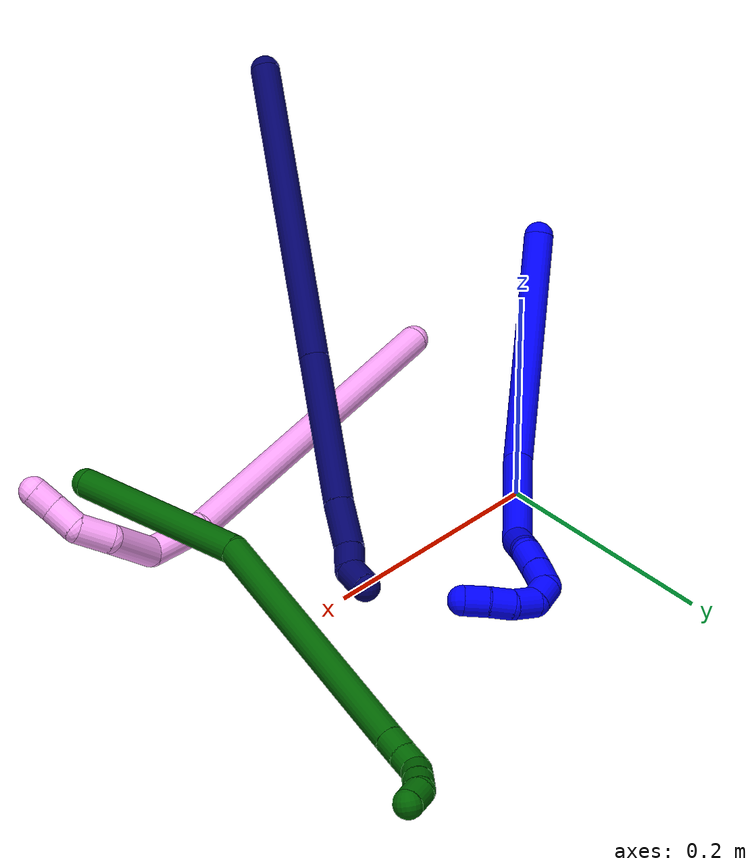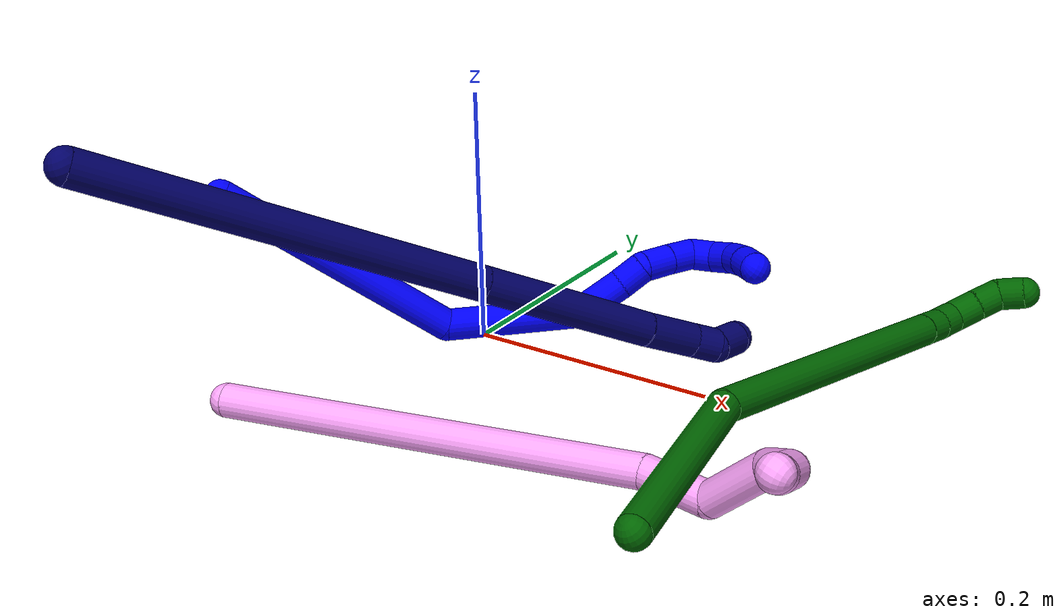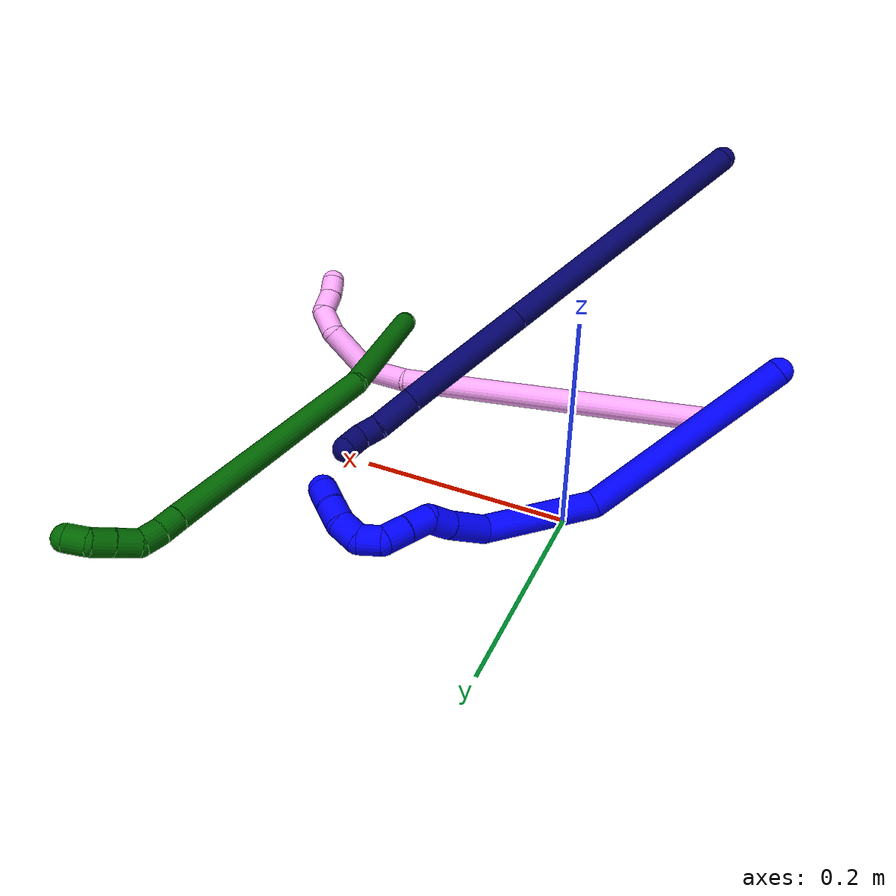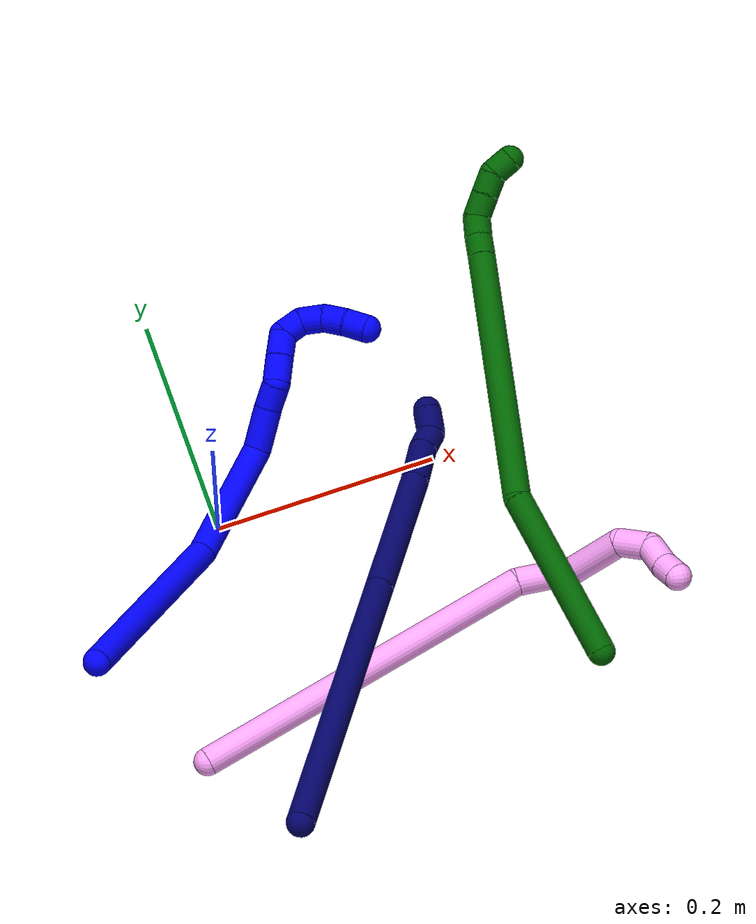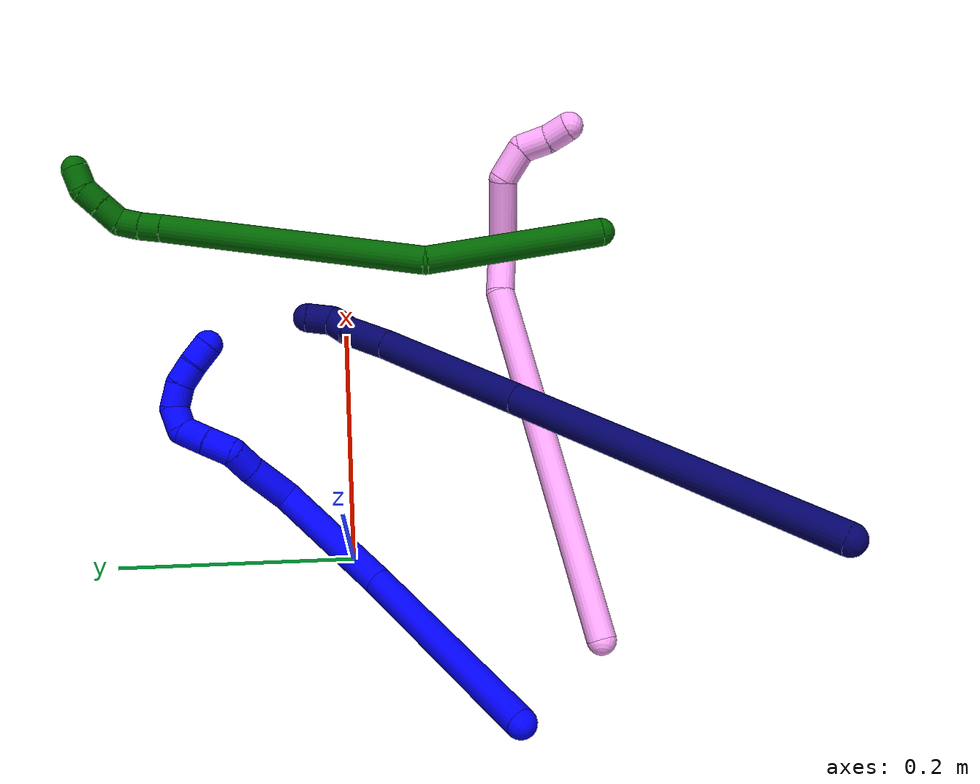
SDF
<sdf version="1.7">
 <world name="default">
  <model name="photoneo_s_sensor">
   <static>1</static>
   <pose>0 0 2 1.57079 1.57079 3.14159</pose>
   <link name="link">
    <inertial><mass>0.1</mass></inertial>
    <sensor name="sensor" type="depth">
     <update_rate>30</update_rate>
     <camera>
      <horizontal_fov>1.22</horizontal_fov>
      <image><width>1920</width><height>1200</height><format>B8G8R8</format></image>
      <clip><near>0.1</near><far>4</far></clip>
      <depth_camera><output>points</output></depth_camera>
     </camera>
     <plugin name="camera_plugin" filename="libgazebo_ros_depth_camera.so">
      <baseline>0.2</baseline>
      <alwaysOn>1</alwaysOn>
      <updateRate>0.0</updateRate>
      <cameraName>camera_ir</cameraName>
      <imageTopicName>/camera/color/image_raw</imageTopicName>
      <cameraInfoTopicName>/camera/color/camera_info</cameraInfoTopicName>
      <depthImageTopicName>/camera/depth/image_raw</depthImageTopicName>
      <depthImageCameraInfoTopicName>/camera/depth/camera_info</depthImageCameraInfoTopicName>
      <pointCloudTopicName>/camera/depth/points</pointCloudTopicName>
      <frameName>fr_optical</frameName>
      <pointCloudCutoff>0.1</pointCloudCutoff>
      <pointCloudCutoffMax>2.0</pointCloudCutoffMax>
      <distortionK1>0</distortionK1>
      <distortionK2>0</distortionK2>
      <distortionK3>0</distortionK3>
      <distortionT1>0</distortionT1>
      <distortionT2>0</distortionT2>
      <CxPrime>0</CxPrime>
      <Cx>0</Cx>
      <Cy>0</Cy>
      <focalLength>0</focalLength>
      <hackBaseline>0</hackBaseline>
     </plugin>
    </sensor>
   </link>
  </model>
  <model name="1">
   <static>0</static>
   <link name="1">
    <collision name="collision-cylinder-e_1_1_4">
     <pose>0.002412 -0.004543 -0.100355 3.09636 0.024004 0.975644</pose>
     <geometry><cylinder><radius>0.0125</radius><length>0.200973</length></cylinder></geometry>
     <surface>
      <friction><ode><mu>1.16</mu><mu2>1.16</mu2><slip1>0</slip1><slip2>0</slip2></ode></friction>
      <contact><ode><kp>1e+06</kp><kd>1</kd><max_vel>0</max_vel><min_depth>0.001</min_depth></ode></contact>
     </surface>
    </collision>
    <visual name="visual-cylinder-e_1_1_4">
     <pose>0.002412 -0.004543 -0.100355 3.09636 0.024004 0.975644</pose>
     <geometry><cylinder><radius>0.0125</radius><length>0.200973</length></cylinder></geometry>
     <material><ambient>0 0 1 1</ambient></material>
    </visual>
    <collision name="collision-cylinder-e_2_4_5">
     <pose>0.017116 0.018301 -0.245163 -2.58944 0.231215 -0.778003</pose>
     <geometry><cylinder><radius>0.0125</radius><length>0.10728</length></cylinder></geometry>
     <surface>
      <friction><ode><mu>1.16</mu><mu2>1.16</mu2><slip1>0</slip1><slip2>0</slip2></ode></friction>
      <contact><ode><kp>1e+06</kp><kd>1</kd><max_vel>0</max_vel><min_depth>0.001</min_depth></ode></contact>
     </surface>
    </collision>
    <visual name="visual-cylinder-e_2_4_5">
     <pose>0.017116 0.018301 -0.245163 -2.58944 0.231215 -0.778003</pose>
     <geometry><cylinder><radius>0.0125</radius><length>0.10728</length></cylinder></geometry>
     <material><ambient>0 0 1 1</ambient></material>
    </visual>
    <collision name="collision-cylinder-e_3_5_6">
     <pose>0.034408 0.062632 -0.2986 -2.05829 0.255019 -0.41988</pose>
     <geometry><cylinder><radius>0.0125</radius><length>0.039639</length></cylinder></geometry>
     <surface>
      <friction><ode><mu>1.16</mu><mu2>1.16</mu2><slip1>0</slip1><slip2>0</slip2></ode></friction>
      <contact><ode><kp>1e+06</kp><kd>1</kd><max_vel>0</max_vel><min_depth>0.001</min_depth></ode></contact>
     </surface>
    </collision>
    <visual name="visual-cylinder-e_3_5_6">
     <pose>0.034408 0.062632 -0.2986 -2.05829 0.255019 -0.41988</pose>
     <geometry><cylinder><radius>0.0125</radius><length>0.039639</length></cylinder></geometry>
     <material><ambient>0 0 1 1</ambient></material>
    </visual>
    <collision name="collision-cylinder-e_4_6_7">
     <pose>0.043514 0.089275 -0.311739 -1.97561 0.371149 -0.554694</pose>
     <geometry><cylinder><radius>0.0125</radius><length>0.022643</length></cylinder></geometry>
     <surface>
      <friction><ode><mu>1.16</mu><mu2>1.16</mu2><slip1>0</slip1><slip2>0</slip2></ode></friction>
      <contact><ode><kp>1e+06</kp><kd>1</kd><max_vel>0</max_vel><min_depth>0.001</min_depth></ode></contact>
     </surface>
    </collision>
    <visual name="visual-cylinder-e_4_6_7">
     <pose>0.043514 0.089275 -0.311739 -1.97561 0.371149 -0.554694</pose>
     <geometry><cylinder><radius>0.0125</radius><length>0.022643</length></cylinder></geometry>
     <material><ambient>0 0 1 1</ambient></material>
    </visual>
    <collision name="collision-cylinder-e_5_7_8">
     <pose>0.046689 0.10698 -0.325044 -2.42266 -0.076394 0.20269</pose>
     <geometry><cylinder><radius>0.0125</radius><length>0.024388</length></cylinder></geometry>
     <surface>
      <friction><ode><mu>1.16</mu><mu2>1.16</mu2><slip1>0</slip1><slip2>0</slip2></ode></friction>
      <contact><ode><kp>1e+06</kp><kd>1</kd><max_vel>0</max_vel><min_depth>0.001</min_depth></ode></contact>
     </surface>
    </collision>
    <visual name="visual-cylinder-e_5_7_8">
     <pose>0.046689 0.10698 -0.325044 -2.42266 -0.076394 0.20269</pose>
     <geometry><cylinder><radius>0.0125</radius><length>0.024388</length></cylinder></geometry>
     <material><ambient>0 0 1 1</ambient></material>
    </visual>
    <collision name="collision-cylinder-e_6_8_9">
     <pose>0.044982 0.122081 -0.342994 -2.46319 -0.0686 0.19389</pose>
     <geometry><cylinder><radius>0.0125</radius><length>0.02266</length></cylinder></geometry>
     <surface>
      <friction><ode><mu>1.16</mu><mu2>1.16</mu2><slip1>0</slip1><slip2>0</slip2></ode></friction>
      <contact><ode><kp>1e+06</kp><kd>1</kd><max_vel>0</max_vel><min_depth>0.001</min_depth></ode></contact>
     </surface>
    </collision>
    <visual name="visual-cylinder-e_6_8_9">
     <pose>0.044982 0.122081 -0.342994 -2.46319 -0.0686 0.19389</pose>
     <geometry><cylinder><radius>0.0125</radius><length>0.02266</length></cylinder></geometry>
     <material><ambient>0 0 1 1</ambient></material>
    </visual>
    <collision name="collision-cylinder-e_7_9_10">
     <pose>0.050072 0.131604 -0.35965 -2.84165 0.619669 -2.25962</pose>
     <geometry><cylinder><radius>0.0125</radius><length>0.020203</length></cylinder></geometry>
     <surface>
      <friction><ode><mu>1.16</mu><mu2>1.16</mu2><slip1>0</slip1><slip2>0</slip2></ode></friction>
      <contact><ode><kp>1e+06</kp><kd>1</kd><max_vel>0</max_vel><min_depth>0.001</min_depth></ode></contact>
     </surface>
    </collision>
    <visual name="visual-cylinder-e_7_9_10">
     <pose>0.050072 0.131604 -0.35965 -2.84165 0.619669 -2.25962</pose>
     <geometry><cylinder><radius>0.0125</radius><length>0.020203</length></cylinder></geometry>
     <material><ambient>0 0 1 1</ambient></material>
    </visual>
    <collision name="collision-cylinder-e_8_10_11">
     <pose>0.066298 0.134445 -0.370569 -3.008 1.28088 -2.96254</pose>
     <geometry><cylinder><radius>0.0125</radius><length>0.021621</length></cylinder></geometry>
     <surface>
      <friction><ode><mu>1.16</mu><mu2>1.16</mu2><slip1>0</slip1><slip2>0</slip2></ode></friction>
      <contact><ode><kp>1e+06</kp><kd>1</kd><max_vel>0</max_vel><min_depth>0.001</min_depth></ode></contact>
     </surface>
    </collision>
    <visual name="visual-cylinder-e_8_10_11">
     <pose>0.066298 0.134445 -0.370569 -3.008 1.28088 -2.96254</pose>
     <geometry><cylinder><radius>0.0125</radius><length>0.021621</length></cylinder></geometry>
     <material><ambient>0 0 1 1</ambient></material>
    </visual>
    <collision name="collision-cylinder-e_9_11_12">
     <pose>0.086579 0.133026 -0.373818 1.67191 1.38746 1.4878</pose>
     <geometry><cylinder><radius>0.0125</radius><length>0.020181</length></cylinder></geometry>
     <surface>
      <friction><ode><mu>1.16</mu><mu2>1.16</mu2><slip1>0</slip1><slip2>0</slip2></ode></friction>
      <contact><ode><kp>1e+06</kp><kd>1</kd><max_vel>0</max_vel><min_depth>0.001</min_depth></ode></contact>
     </surface>
    </collision>
    <visual name="visual-cylinder-e_9_11_12">
     <pose>0.086579 0.133026 -0.373818 1.67191 1.38746 1.4878</pose>
     <geometry><cylinder><radius>0.0125</radius><length>0.020181</length></cylinder></geometry>
     <material><ambient>0 0 1 1</ambient></material>
    </visual>
    <collision name="collision-cylinder-e_10_12_2">
     <pose>0.106214 0.128092 -0.374409 1.70059 1.25903 1.38509</pose>
     <geometry><cylinder><radius>0.0125</radius><length>0.020412</length></cylinder></geometry>
     <surface>
      <friction><ode><mu>1.16</mu><mu2>1.16</mu2><slip1>0</slip1><slip2>0</slip2></ode></friction>
      <contact><ode><kp>1e+06</kp><kd>1</kd><max_vel>0</max_vel><min_depth>0.001</min_depth></ode></contact>
     </surface>
    </collision>
    <visual name="visual-cylinder-e_10_12_2">
     <pose>0.106214 0.128092 -0.374409 1.70059 1.25903 1.38509</pose>
     <geometry><cylinder><radius>0.0125</radius><length>0.020412</length></cylinder></geometry>
     <material><ambient>0 0 1 1</ambient></material>
    </visual>
    <collision name="collision-sphere-2">
     <pose>0.115928 0.124987 -0.374814 0 -0 0</pose>
     <geometry><sphere><radius>0.0125</radius></sphere></geometry>
     <surface>
      <friction><ode><mu>1.16</mu><mu2>1.16</mu2><slip1>0</slip1><slip2>0</slip2></ode></friction>
      <contact><ode><kp>1e+06</kp><kd>1</kd><max_vel>0</max_vel><min_depth>0.001</min_depth></ode></contact>
     </surface>
    </collision>
    <visual name="visual-sphere-2">
     <pose>0.115928 0.124987 -0.374814 0 -0 0</pose>
     <geometry><sphere><radius>0.0125</radius></sphere></geometry>
     <material><ambient>0 0 1 1</ambient></material>
    </visual>
    <collision name="collision-sphere-12">
     <pose>0.0965 0.131196 -0.374003 0 -0 0</pose>
     <geometry><sphere><radius>0.0125</radius></sphere></geometry>
     <surface>
      <friction><ode><mu>1.16</mu><mu2>1.16</mu2><slip1>0</slip1><slip2>0</slip2></ode></friction>
      <contact><ode><kp>1e+06</kp><kd>1</kd><max_vel>0</max_vel><min_depth>0.001</min_depth></ode></contact>
     </surface>
    </collision>
    <visual name="visual-sphere-12">
     <pose>0.0965 0.131196 -0.374003 0 -0 0</pose>
     <geometry><sphere><radius>0.0125</radius></sphere></geometry>
     <material><ambient>0 0 1 1</ambient></material>
    </visual>
    <collision name="collision-sphere-11">
     <pose>0.076657 0.134856 -0.373632 0 -0 0</pose>
     <geometry><sphere><radius>0.0125</radius></sphere></geometry>
     <surface>
      <friction><ode><mu>1.16</mu><mu2>1.16</mu2><slip1>0</slip1><slip2>0</slip2></ode></friction>
      <contact><ode><kp>1e+06</kp><kd>1</kd><max_vel>0</max_vel><min_depth>0.001</min_depth></ode></contact>
     </surface>
    </collision>
    <visual name="visual-sphere-11">
     <pose>0.076657 0.134856 -0.373632 0 -0 0</pose>
     <geometry><sphere><radius>0.0125</radius></sphere></geometry>
     <material><ambient>0 0 1 1</ambient></material>
    </visual>
    <collision name="collision-sphere-10">
     <pose>0.055938 0.134033 -0.367506 0 -0 0</pose>
     <geometry><sphere><radius>0.0125</radius></sphere></geometry>
     <surface>
      <friction><ode><mu>1.16</mu><mu2>1.16</mu2><slip1>0</slip1><slip2>0</slip2></ode></friction>
      <contact><ode><kp>1e+06</kp><kd>1</kd><max_vel>0</max_vel><min_depth>0.001</min_depth></ode></contact>
     </surface>
    </collision>
    <visual name="visual-sphere-10">
     <pose>0.055938 0.134033 -0.367506 0 -0 0</pose>
     <geometry><sphere><radius>0.0125</radius></sphere></geometry>
     <material><ambient>0 0 1 1</ambient></material>
    </visual>
    <collision name="collision-sphere-9">
     <pose>0.044205 0.129174 -0.351794 0 -0 0</pose>
     <geometry><sphere><radius>0.0125</radius></sphere></geometry>
     <surface>
      <friction><ode><mu>1.16</mu><mu2>1.16</mu2><slip1>0</slip1><slip2>0</slip2></ode></friction>
      <contact><ode><kp>1e+06</kp><kd>1</kd><max_vel>0</max_vel><min_depth>0.001</min_depth></ode></contact>
     </surface>
    </collision>
    <visual name="visual-sphere-9">
     <pose>0.044205 0.129174 -0.351794 0 -0 0</pose>
     <geometry><sphere><radius>0.0125</radius></sphere></geometry>
     <material><ambient>0 0 1 1</ambient></material>
    </visual>
    <collision name="collision-sphere-4">
     <pose>0.004824 -0.009085 -0.200709 0 -0 0</pose>
     <geometry><sphere><radius>0.0125</radius></sphere></geometry>
     <surface>
      <friction><ode><mu>1.16</mu><mu2>1.16</mu2><slip1>0</slip1><slip2>0</slip2></ode></friction>
      <contact><ode><kp>1e+06</kp><kd>1</kd><max_vel>0</max_vel><min_depth>0.001</min_depth></ode></contact>
     </surface>
    </collision>
    <visual name="visual-sphere-4">
     <pose>0.004824 -0.009085 -0.200709 0 -0 0</pose>
     <geometry><sphere><radius>0.0125</radius></sphere></geometry>
     <material><ambient>0 0 1 1</ambient></material>
    </visual>
    <collision name="collision-sphere-1">
     <geometry><sphere><radius>0.0125</radius></sphere></geometry>
     <surface>
      <friction><ode><mu>1.16</mu><mu2>1.16</mu2><slip1>0</slip1><slip2>0</slip2></ode></friction>
      <contact><ode><kp>1e+06</kp><kd>1</kd><max_vel>0</max_vel><min_depth>0.001</min_depth></ode></contact>
     </surface>
    </collision>
    <visual name="visual-sphere-1">
     <geometry><sphere><radius>0.0125</radius></sphere></geometry>
     <material><ambient>0 0 1 1</ambient></material>
    </visual>
    <collision name="collision-sphere-8">
     <pose>0.045758 0.114987 -0.334193 0 -0 0</pose>
     <geometry><sphere><radius>0.0125</radius></sphere></geometry>
     <surface>
      <friction><ode><mu>1.16</mu><mu2>1.16</mu2><slip1>0</slip1><slip2>0</slip2></ode></friction>
      <contact><ode><kp>1e+06</kp><kd>1</kd><max_vel>0</max_vel><min_depth>0.001</min_depth></ode></contact>
     </surface>
    </collision>
    <visual name="visual-sphere-8">
     <pose>0.045758 0.114987 -0.334193 0 -0 0</pose>
     <geometry><sphere><radius>0.0125</radius></sphere></geometry>
     <material><ambient>0 0 1 1</ambient></material>
    </visual>
    <collision name="collision-sphere-5">
     <pose>0.029408 0.045688 -0.289617 0 -0 0</pose>
     <geometry><sphere><radius>0.0125</radius></sphere></geometry>
     <surface>
      <friction><ode><mu>1.16</mu><mu2>1.16</mu2><slip1>0</slip1><slip2>0</slip2></ode></friction>
      <contact><ode><kp>1e+06</kp><kd>1</kd><max_vel>0</max_vel><min_depth>0.001</min_depth></ode></contact>
     </surface>
    </collision>
    <visual name="visual-sphere-5">
     <pose>0.029408 0.045688 -0.289617 0 -0 0</pose>
     <geometry><sphere><radius>0.0125</radius></sphere></geometry>
     <material><ambient>0 0 1 1</ambient></material>
    </visual>
    <collision name="collision-sphere-6">
     <pose>0.039407 0.079577 -0.307584 0 -0 0</pose>
     <geometry><sphere><radius>0.0125</radius></sphere></geometry>
     <surface>
      <friction><ode><mu>1.16</mu><mu2>1.16</mu2><slip1>0</slip1><slip2>0</slip2></ode></friction>
      <contact><ode><kp>1e+06</kp><kd>1</kd><max_vel>0</max_vel><min_depth>0.001</min_depth></ode></contact>
     </surface>
    </collision>
    <visual name="visual-sphere-6">
     <pose>0.039407 0.079577 -0.307584 0 -0 0</pose>
     <geometry><sphere><radius>0.0125</radius></sphere></geometry>
     <material><ambient>0 0 1 1</ambient></material>
    </visual>
    <collision name="collision-sphere-7">
     <pose>0.04762 0.098972 -0.315894 0 -0 0</pose>
     <geometry><sphere><radius>0.0125</radius></sphere></geometry>
     <surface>
      <friction><ode><mu>1.16</mu><mu2>1.16</mu2><slip1>0</slip1><slip2>0</slip2></ode></friction>
      <contact><ode><kp>1e+06</kp><kd>1</kd><max_vel>0</max_vel><min_depth>0.001</min_depth></ode></contact>
     </surface>
    </collision>
    <visual name="visual-sphere-7">
     <pose>0.04762 0.098972 -0.315894 0 -0 0</pose>
     <geometry><sphere><radius>0.0125</radius></sphere></geometry>
     <material><ambient>0 0 1 1</ambient></material>
    </visual>
    <inertial>
     <pose>0.026377 0.04359 -0.223057 0 -0 0</pose>
     <mass>0.5</mass>
     <inertia>
      <ixx>0.000967</ixx>
      <ixy>0</ixy>
      <ixz>0</ixz>
      <iyy>6.2e-05</iyy>
      <iyz>0</iyz>
      <izz>-0.000111</izz>
     </inertia>
    </inertial>
   </link>
   <pose>-0.147863 -0.123817 0.128376 0.918235 -0.402626 -0.541233</pose>
  </model>
  <model name="4">
   <static>0</static>
   <link name="4">
    <collision name="collision-cylinder-e_1_1_4">
     <pose>0.062179 -0.003214 0.145124 0.02214 0.404702 0.004542</pose>
     <geometry><cylinder><radius>0.0125</radius><length>0.315833</length></cylinder></geometry>
     <surface>
      <friction><ode><mu>1.16</mu><mu2>1.16</mu2><slip1>0</slip1><slip2>0</slip2></ode></friction>
      <contact><ode><kp>1e+06</kp><kd>1</kd><max_vel>0</max_vel><min_depth>0.001</min_depth></ode></contact>
     </surface>
    </collision>
    <visual name="visual-cylinder-e_1_1_4">
     <pose>0.062179 -0.003214 0.145124 0.02214 0.404702 0.004542</pose>
     <geometry><cylinder><radius>0.0125</radius><length>0.315833</length></cylinder></geometry>
     <material><ambient>1 0.65098 0.996078 1</ambient></material>
    </visual>
    <collision name="collision-cylinder-e_2_4_5">
     <pose>0.128328 -0.001599 0.315246 -0.19078 0.154726 -0.014834</pose>
     <geometry><cylinder><radius>0.0125</radius><length>0.051534</length></cylinder></geometry>
     <surface>
      <friction><ode><mu>1.16</mu><mu2>1.16</mu2><slip1>0</slip1><slip2>0</slip2></ode></friction>
      <contact><ode><kp>1e+06</kp><kd>1</kd><max_vel>0</max_vel><min_depth>0.001</min_depth></ode></contact>
     </surface>
    </collision>
    <visual name="visual-cylinder-e_2_4_5">
     <pose>0.128328 -0.001599 0.315246 -0.19078 0.154726 -0.014834</pose>
     <geometry><cylinder><radius>0.0125</radius><length>0.051534</length></cylinder></geometry>
     <material><ambient>1 0.65098 0.996078 1</ambient></material>
    </visual>
    <collision name="collision-cylinder-e_3_5_6">
     <pose>0.15087 0.018111 0.355029 -0.788667 0.724562 -0.312857</pose>
     <geometry><cylinder><radius>0.0125</radius><length>0.056035</length></cylinder></geometry>
     <surface>
      <friction><ode><mu>1.16</mu><mu2>1.16</mu2><slip1>0</slip1><slip2>0</slip2></ode></friction>
      <contact><ode><kp>1e+06</kp><kd>1</kd><max_vel>0</max_vel><min_depth>0.001</min_depth></ode></contact>
     </surface>
    </collision>
    <visual name="visual-cylinder-e_3_5_6">
     <pose>0.15087 0.018111 0.355029 -0.788667 0.724562 -0.312857</pose>
     <geometry><cylinder><radius>0.0125</radius><length>0.056035</length></cylinder></geometry>
     <material><ambient>1 0.65098 0.996078 1</ambient></material>
    </visual>
    <collision name="collision-cylinder-e_4_6_7">
     <pose>0.171633 0.045174 0.378909 -0.929495 0.143331 -0.071955</pose>
     <geometry><cylinder><radius>0.0125</radius><length>0.030716</length></cylinder></geometry>
     <surface>
      <friction><ode><mu>1.16</mu><mu2>1.16</mu2><slip1>0</slip1><slip2>0</slip2></ode></friction>
      <contact><ode><kp>1e+06</kp><kd>1</kd><max_vel>0</max_vel><min_depth>0.001</min_depth></ode></contact>
     </surface>
    </collision>
    <visual name="visual-cylinder-e_4_6_7">
     <pose>0.171633 0.045174 0.378909 -0.929495 0.143331 -0.071955</pose>
     <geometry><cylinder><radius>0.0125</radius><length>0.030716</length></cylinder></geometry>
     <material><ambient>1 0.65098 0.996078 1</ambient></material>
    </visual>
    <collision name="collision-cylinder-e_5_7_8">
     <pose>0.17024 0.069422 0.389228 -1.46957 -0.287572 0.26017</pose>
     <geometry><cylinder><radius>0.0125</radius><length>0.025297</length></cylinder></geometry>
     <surface>
      <friction><ode><mu>1.16</mu><mu2>1.16</mu2><slip1>0</slip1><slip2>0</slip2></ode></friction>
      <contact><ode><kp>1e+06</kp><kd>1</kd><max_vel>0</max_vel><min_depth>0.001</min_depth></ode></contact>
     </surface>
    </collision>
    <visual name="visual-cylinder-e_5_7_8">
     <pose>0.17024 0.069422 0.389228 -1.46957 -0.287572 0.26017</pose>
     <geometry><cylinder><radius>0.0125</radius><length>0.025297</length></cylinder></geometry>
     <material><ambient>1 0.65098 0.996078 1</ambient></material>
    </visual>
    <collision name="collision-cylinder-e_6_8_2">
     <pose>0.165842 0.09159 0.392257 -1.39413 -0.078835 0.066018</pose>
     <geometry><cylinder><radius>0.0125</radius><length>0.020585</length></cylinder></geometry>
     <surface>
      <friction><ode><mu>1.16</mu><mu2>1.16</mu2><slip1>0</slip1><slip2>0</slip2></ode></friction>
      <contact><ode><kp>1e+06</kp><kd>1</kd><max_vel>0</max_vel><min_depth>0.001</min_depth></ode></contact>
     </surface>
    </collision>
    <visual name="visual-cylinder-e_6_8_2">
     <pose>0.165842 0.09159 0.392257 -1.39413 -0.078835 0.066018</pose>
     <geometry><cylinder><radius>0.0125</radius><length>0.020585</length></cylinder></geometry>
     <material><ambient>1 0.65098 0.996078 1</ambient></material>
    </visual>
    <collision name="collision-sphere-2">
     <pose>0.165031 0.101691 0.39406 0 -0 0</pose>
     <geometry><sphere><radius>0.0125</radius></sphere></geometry>
     <surface>
      <friction><ode><mu>1.16</mu><mu2>1.16</mu2><slip1>0</slip1><slip2>0</slip2></ode></friction>
      <contact><ode><kp>1e+06</kp><kd>1</kd><max_vel>0</max_vel><min_depth>0.001</min_depth></ode></contact>
     </surface>
    </collision>
    <visual name="visual-sphere-2">
     <pose>0.165031 0.101691 0.39406 0 -0 0</pose>
     <geometry><sphere><radius>0.0125</radius></sphere></geometry>
     <material><ambient>1 0.65098 0.996078 1</ambient></material>
    </visual>
    <collision name="collision-sphere-4">
     <pose>0.124357 -0.006427 0.290249 0 -0 0</pose>
     <geometry><sphere><radius>0.0125</radius></sphere></geometry>
     <surface>
      <friction><ode><mu>1.16</mu><mu2>1.16</mu2><slip1>0</slip1><slip2>0</slip2></ode></friction>
      <contact><ode><kp>1e+06</kp><kd>1</kd><max_vel>0</max_vel><min_depth>0.001</min_depth></ode></contact>
     </surface>
    </collision>
    <visual name="visual-sphere-4">
     <pose>0.124357 -0.006427 0.290249 0 -0 0</pose>
     <geometry><sphere><radius>0.0125</radius></sphere></geometry>
     <material><ambient>1 0.65098 0.996078 1</ambient></material>
    </visual>
    <collision name="collision-sphere-1">
     <geometry><sphere><radius>0.0125</radius></sphere></geometry>
     <surface>
      <friction><ode><mu>1.16</mu><mu2>1.16</mu2><slip1>0</slip1><slip2>0</slip2></ode></friction>
      <contact><ode><kp>1e+06</kp><kd>1</kd><max_vel>0</max_vel><min_depth>0.001</min_depth></ode></contact>
     </surface>
    </collision>
    <visual name="visual-sphere-1">
     <geometry><sphere><radius>0.0125</radius></sphere></geometry>
     <material><ambient>1 0.65098 0.996078 1</ambient></material>
    </visual>
    <collision name="collision-sphere-8">
     <pose>0.166652 0.081489 0.390454 0 -0 0</pose>
     <geometry><sphere><radius>0.0125</radius></sphere></geometry>
     <surface>
      <friction><ode><mu>1.16</mu><mu2>1.16</mu2><slip1>0</slip1><slip2>0</slip2></ode></friction>
      <contact><ode><kp>1e+06</kp><kd>1</kd><max_vel>0</max_vel><min_depth>0.001</min_depth></ode></contact>
     </surface>
    </collision>
    <visual name="visual-sphere-8">
     <pose>0.166652 0.081489 0.390454 0 -0 0</pose>
     <geometry><sphere><radius>0.0125</radius></sphere></geometry>
     <material><ambient>1 0.65098 0.996078 1</ambient></material>
    </visual>
    <collision name="collision-sphere-5">
     <pose>0.132299 0.003228 0.340244 0 -0 0</pose>
     <geometry><sphere><radius>0.0125</radius></sphere></geometry>
     <surface>
      <friction><ode><mu>1.16</mu><mu2>1.16</mu2><slip1>0</slip1><slip2>0</slip2></ode></friction>
      <contact><ode><kp>1e+06</kp><kd>1</kd><max_vel>0</max_vel><min_depth>0.001</min_depth></ode></contact>
     </surface>
    </collision>
    <visual name="visual-sphere-5">
     <pose>0.132299 0.003228 0.340244 0 -0 0</pose>
     <geometry><sphere><radius>0.0125</radius></sphere></geometry>
     <material><ambient>1 0.65098 0.996078 1</ambient></material>
    </visual>
    <collision name="collision-sphere-6">
     <pose>0.16944 0.032994 0.369815 0 -0 0</pose>
     <geometry><sphere><radius>0.0125</radius></sphere></geometry>
     <surface>
      <friction><ode><mu>1.16</mu><mu2>1.16</mu2><slip1>0</slip1><slip2>0</slip2></ode></friction>
      <contact><ode><kp>1e+06</kp><kd>1</kd><max_vel>0</max_vel><min_depth>0.001</min_depth></ode></contact>
     </surface>
    </collision>
    <visual name="visual-sphere-6">
     <pose>0.16944 0.032994 0.369815 0 -0 0</pose>
     <geometry><sphere><radius>0.0125</radius></sphere></geometry>
     <material><ambient>1 0.65098 0.996078 1</ambient></material>
    </visual>
    <collision name="collision-sphere-7">
     <pose>0.173827 0.057355 0.388002 0 -0 0</pose>
     <geometry><sphere><radius>0.0125</radius></sphere></geometry>
     <surface>
      <friction><ode><mu>1.16</mu><mu2>1.16</mu2><slip1>0</slip1><slip2>0</slip2></ode></friction>
      <contact><ode><kp>1e+06</kp><kd>1</kd><max_vel>0</max_vel><min_depth>0.001</min_depth></ode></contact>
     </surface>
    </collision>
    <visual name="visual-sphere-7">
     <pose>0.173827 0.057355 0.388002 0 -0 0</pose>
     <geometry><sphere><radius>0.0125</radius></sphere></geometry>
     <material><ambient>1 0.65098 0.996078 1</ambient></material>
    </visual>
    <inertial>
     <pose>0.095395 0.009893 0.223069 0 -0 0</pose>
     <mass>0.5</mass>
     <inertia>
      <ixx>0.002477</ixx>
      <ixy>0</ixy>
      <ixz>0</ixz>
      <iyy>0.002682</iyy>
      <iyz>0</iyz>
      <izz>-0.000985</izz>
     </inertia>
    </inertial>
   </link>
   <pose>-0.0783 -0.204262 0.011499 1.99083 -0.798425 1.19408</pose>
  </model>
  <model name="6">
   <static>0</static>
   <link name="6">
    <collision name="collision-cylinder-e_1_1_4">
     <pose>-0.009126 0.072399 -0.029818 -1.96148 -0.116031 0.173036</pose>
     <geometry><cylinder><radius>0.0125</radius><length>0.157659</length></cylinder></geometry>
     <surface>
      <friction><ode><mu>1.16</mu><mu2>1.16</mu2><slip1>0</slip1><slip2>0</slip2></ode></friction>
      <contact><ode><kp>1e+06</kp><kd>1</kd><max_vel>0</max_vel><min_depth>0.001</min_depth></ode></contact>
     </surface>
    </collision>
    <visual name="visual-cylinder-e_1_1_4">
     <pose>-0.009126 0.072399 -0.029818 -1.96148 -0.116031 0.173036</pose>
     <geometry><cylinder><radius>0.0125</radius><length>0.157659</length></cylinder></geometry>
     <material><ambient>0 0.392157 0.003922 1</ambient></material>
    </visual>
    <collision name="collision-cylinder-e_2_4_5">
     <pose>0.003621 0.239589 -0.129727 -2.2075 0.183452 -0.360866</pose>
     <geometry><cylinder><radius>0.0125</radius><length>0.239803</length></cylinder></geometry>
     <surface>
      <friction><ode><mu>1.16</mu><mu2>1.16</mu2><slip1>0</slip1><slip2>0</slip2></ode></friction>
      <contact><ode><kp>1e+06</kp><kd>1</kd><max_vel>0</max_vel><min_depth>0.001</min_depth></ode></contact>
     </surface>
    </collision>
    <visual name="visual-cylinder-e_2_4_5">
     <pose>0.003621 0.239589 -0.129727 -2.2075 0.183452 -0.360866</pose>
     <geometry><cylinder><radius>0.0125</radius><length>0.239803</length></cylinder></geometry>
     <material><ambient>0 0.392157 0.003922 1</ambient></material>
    </visual>
    <collision name="collision-cylinder-e_3_5_6">
     <pose>0.027144 0.34235 -0.205792 -2.21387 0.16414 -0.325928</pose>
     <geometry><cylinder><radius>0.0125</radius><length>0.020193</length></cylinder></geometry>
     <surface>
      <friction><ode><mu>1.16</mu><mu2>1.16</mu2><slip1>0</slip1><slip2>0</slip2></ode></friction>
      <contact><ode><kp>1e+06</kp><kd>1</kd><max_vel>0</max_vel><min_depth>0.001</min_depth></ode></contact>
     </surface>
    </collision>
    <visual name="visual-cylinder-e_3_5_6">
     <pose>0.027144 0.34235 -0.205792 -2.21387 0.16414 -0.325928</pose>
     <geometry><cylinder><radius>0.0125</radius><length>0.020193</length></cylinder></geometry>
     <material><ambient>0 0.392157 0.003922 1</ambient></material>
    </visual>
    <collision name="collision-cylinder-e_4_6_7">
     <pose>0.031333 0.358666 -0.216798 -2.11352 0.254934 -0.446372</pose>
     <geometry><cylinder><radius>0.0125</radius><length>0.020142</length></cylinder></geometry>
     <surface>
      <friction><ode><mu>1.16</mu><mu2>1.16</mu2><slip1>0</slip1><slip2>0</slip2></ode></friction>
      <contact><ode><kp>1e+06</kp><kd>1</kd><max_vel>0</max_vel><min_depth>0.001</min_depth></ode></contact>
     </surface>
    </collision>
    <visual name="visual-cylinder-e_4_6_7">
     <pose>0.031333 0.358666 -0.216798 -2.11352 0.254934 -0.446372</pose>
     <geometry><cylinder><radius>0.0125</radius><length>0.020142</length></cylinder></geometry>
     <material><ambient>0 0.392157 0.003922 1</ambient></material>
    </visual>
    <collision name="collision-cylinder-e_5_7_8">
     <pose>0.041416 0.374704 -0.223605 -1.79731 0.76265 -0.933474</pose>
     <geometry><cylinder><radius>0.0125</radius><length>0.021838</length></cylinder></geometry>
     <surface>
      <friction><ode><mu>1.16</mu><mu2>1.16</mu2><slip1>0</slip1><slip2>0</slip2></ode></friction>
      <contact><ode><kp>1e+06</kp><kd>1</kd><max_vel>0</max_vel><min_depth>0.001</min_depth></ode></contact>
     </surface>
    </collision>
    <visual name="visual-cylinder-e_5_7_8">
     <pose>0.041416 0.374704 -0.223605 -1.79731 0.76265 -0.933474</pose>
     <geometry><cylinder><radius>0.0125</radius><length>0.021838</length></cylinder></geometry>
     <material><ambient>0 0.392157 0.003922 1</ambient></material>
    </visual>
    <collision name="collision-cylinder-e_6_8_9">
     <pose>0.055984 0.389433 -0.227254 -1.83144 0.767444 -0.967727</pose>
     <geometry><cylinder><radius>0.0125</radius><length>0.020235</length></cylinder></geometry>
     <surface>
      <friction><ode><mu>1.16</mu><mu2>1.16</mu2><slip1>0</slip1><slip2>0</slip2></ode></friction>
      <contact><ode><kp>1e+06</kp><kd>1</kd><max_vel>0</max_vel><min_depth>0.001</min_depth></ode></contact>
     </surface>
    </collision>
    <visual name="visual-cylinder-e_6_8_9">
     <pose>0.055984 0.389433 -0.227254 -1.83144 0.767444 -0.967727</pose>
     <geometry><cylinder><radius>0.0125</radius><length>0.020235</length></cylinder></geometry>
     <material><ambient>0 0.392157 0.003922 1</ambient></material>
    </visual>
    <collision name="collision-cylinder-e_7_9_2">
     <pose>0.072441 0.398997 -0.231569 -2.33812 1.21427 -2.0438</pose>
     <geometry><cylinder><radius>0.0125</radius><length>0.02013</length></cylinder></geometry>
     <surface>
      <friction><ode><mu>1.16</mu><mu2>1.16</mu2><slip1>0</slip1><slip2>0</slip2></ode></friction>
      <contact><ode><kp>1e+06</kp><kd>1</kd><max_vel>0</max_vel><min_depth>0.001</min_depth></ode></contact>
     </surface>
    </collision>
    <visual name="visual-cylinder-e_7_9_2">
     <pose>0.072441 0.398997 -0.231569 -2.33812 1.21427 -2.0438</pose>
     <geometry><cylinder><radius>0.0125</radius><length>0.02013</length></cylinder></geometry>
     <material><ambient>0 0.392157 0.003922 1</ambient></material>
    </visual>
    <collision name="collision-sphere-2">
     <pose>0.081873 0.401525 -0.234008 0 -0 0</pose>
     <geometry><sphere><radius>0.0125</radius></sphere></geometry>
     <surface>
      <friction><ode><mu>1.16</mu><mu2>1.16</mu2><slip1>0</slip1><slip2>0</slip2></ode></friction>
      <contact><ode><kp>1e+06</kp><kd>1</kd><max_vel>0</max_vel><min_depth>0.001</min_depth></ode></contact>
     </surface>
    </collision>
    <visual name="visual-sphere-2">
     <pose>0.081873 0.401525 -0.234008 0 -0 0</pose>
     <geometry><sphere><radius>0.0125</radius></sphere></geometry>
     <material><ambient>0 0.392157 0.003922 1</ambient></material>
    </visual>
    <collision name="collision-sphere-9">
     <pose>0.063009 0.396468 -0.229131 0 -0 0</pose>
     <geometry><sphere><radius>0.0125</radius></sphere></geometry>
     <surface>
      <friction><ode><mu>1.16</mu><mu2>1.16</mu2><slip1>0</slip1><slip2>0</slip2></ode></friction>
      <contact><ode><kp>1e+06</kp><kd>1</kd><max_vel>0</max_vel><min_depth>0.001</min_depth></ode></contact>
     </surface>
    </collision>
    <visual name="visual-sphere-9">
     <pose>0.063009 0.396468 -0.229131 0 -0 0</pose>
     <geometry><sphere><radius>0.0125</radius></sphere></geometry>
     <material><ambient>0 0.392157 0.003922 1</ambient></material>
    </visual>
    <collision name="collision-sphere-4">
     <pose>-0.018252 0.144799 -0.059636 0 -0 0</pose>
     <geometry><sphere><radius>0.0125</radius></sphere></geometry>
     <surface>
      <friction><ode><mu>1.16</mu><mu2>1.16</mu2><slip1>0</slip1><slip2>0</slip2></ode></friction>
      <contact><ode><kp>1e+06</kp><kd>1</kd><max_vel>0</max_vel><min_depth>0.001</min_depth></ode></contact>
     </surface>
    </collision>
    <visual name="visual-sphere-4">
     <pose>-0.018252 0.144799 -0.059636 0 -0 0</pose>
     <geometry><sphere><radius>0.0125</radius></sphere></geometry>
     <material><ambient>0 0.392157 0.003922 1</ambient></material>
    </visual>
    <collision name="collision-sphere-1">
     <geometry><sphere><radius>0.0125</radius></sphere></geometry>
     <surface>
      <friction><ode><mu>1.16</mu><mu2>1.16</mu2><slip1>0</slip1><slip2>0</slip2></ode></friction>
      <contact><ode><kp>1e+06</kp><kd>1</kd><max_vel>0</max_vel><min_depth>0.001</min_depth></ode></contact>
     </surface>
    </collision>
    <visual name="visual-sphere-1">
     <geometry><sphere><radius>0.0125</radius></sphere></geometry>
     <material><ambient>0 0.392157 0.003922 1</ambient></material>
    </visual>
    <collision name="collision-sphere-8">
     <pose>0.048959 0.382397 -0.225377 0 -0 0</pose>
     <geometry><sphere><radius>0.0125</radius></sphere></geometry>
     <surface>
      <friction><ode><mu>1.16</mu><mu2>1.16</mu2><slip1>0</slip1><slip2>0</slip2></ode></friction>
      <contact><ode><kp>1e+06</kp><kd>1</kd><max_vel>0</max_vel><min_depth>0.001</min_depth></ode></contact>
     </surface>
    </collision>
    <visual name="visual-sphere-8">
     <pose>0.048959 0.382397 -0.225377 0 -0 0</pose>
     <geometry><sphere><radius>0.0125</radius></sphere></geometry>
     <material><ambient>0 0.392157 0.003922 1</ambient></material>
    </visual>
    <collision name="collision-sphere-5">
     <pose>0.025494 0.334379 -0.199819 0 -0 0</pose>
     <geometry><sphere><radius>0.0125</radius></sphere></geometry>
     <surface>
      <friction><ode><mu>1.16</mu><mu2>1.16</mu2><slip1>0</slip1><slip2>0</slip2></ode></friction>
      <contact><ode><kp>1e+06</kp><kd>1</kd><max_vel>0</max_vel><min_depth>0.001</min_depth></ode></contact>
     </surface>
    </collision>
    <visual name="visual-sphere-5">
     <pose>0.025494 0.334379 -0.199819 0 -0 0</pose>
     <geometry><sphere><radius>0.0125</radius></sphere></geometry>
     <material><ambient>0 0.392157 0.003922 1</ambient></material>
    </visual>
    <collision name="collision-sphere-6">
     <pose>0.028793 0.350321 -0.211765 0 -0 0</pose>
     <geometry><sphere><radius>0.0125</radius></sphere></geometry>
     <surface>
      <friction><ode><mu>1.16</mu><mu2>1.16</mu2><slip1>0</slip1><slip2>0</slip2></ode></friction>
      <contact><ode><kp>1e+06</kp><kd>1</kd><max_vel>0</max_vel><min_depth>0.001</min_depth></ode></contact>
     </surface>
    </collision>
    <visual name="visual-sphere-6">
     <pose>0.028793 0.350321 -0.211765 0 -0 0</pose>
     <geometry><sphere><radius>0.0125</radius></sphere></geometry>
     <material><ambient>0 0.392157 0.003922 1</ambient></material>
    </visual>
    <collision name="collision-sphere-7">
     <pose>0.033873 0.367011 -0.221832 0 -0 0</pose>
     <geometry><sphere><radius>0.0125</radius></sphere></geometry>
     <surface>
      <friction><ode><mu>1.16</mu><mu2>1.16</mu2><slip1>0</slip1><slip2>0</slip2></ode></friction>
      <contact><ode><kp>1e+06</kp><kd>1</kd><max_vel>0</max_vel><min_depth>0.001</min_depth></ode></contact>
     </surface>
    </collision>
    <visual name="visual-sphere-7">
     <pose>0.033873 0.367011 -0.221832 0 -0 0</pose>
     <geometry><sphere><radius>0.0125</radius></sphere></geometry>
     <material><ambient>0 0.392157 0.003922 1</ambient></material>
    </visual>
    <inertial>
     <pose>0.008208 0.214201 -0.116951 0 -0 0</pose>
     <mass>0.5</mass>
     <inertia>
      <ixx>0.001053</ixx>
      <ixy>0</ixy>
      <ixz>0</ixz>
      <iyy>-0.001019</iyy>
      <iyz>0</iyz>
      <izz>-0.001422</izz>
     </inertia>
    </inertial>
   </link>
   <pose>0.27659 -0.227658 0.032175 0.473423 -0.274931 0.011172</pose>
  </model>
  <model name="7">
   <static>0</static>
   <link name="7">
    <collision name="collision-cylinder-e_1_1_4">
     <pose>0.029624 0.095186 -0.099616 -2.37893 0.211785 -0.518261</pose>
     <geometry><cylinder><radius>0.0125</radius><length>0.28186</length></cylinder></geometry>
     <surface>
      <friction><ode><mu>1.16</mu><mu2>1.16</mu2><slip1>0</slip1><slip2>0</slip2></ode></friction>
      <contact><ode><kp>1e+06</kp><kd>1</kd><max_vel>0</max_vel><min_depth>0.001</min_depth></ode></contact>
     </surface>
    </collision>
    <visual name="visual-cylinder-e_1_1_4">
     <pose>0.029624 0.095186 -0.099616 -2.37893 0.211785 -0.518261</pose>
     <geometry><cylinder><radius>0.0125</radius><length>0.28186</length></cylinder></geometry>
     <material><ambient>0.003922 0 0.403922 1</ambient></material>
    </visual>
    <collision name="collision-cylinder-e_2_4_5">
     <pose>0.073331 0.235681 -0.246641 -2.37885 0.211534 -0.517612</pose>
     <geometry><cylinder><radius>0.0125</radius><length>0.134146</length></cylinder></geometry>
     <surface>
      <friction><ode><mu>1.16</mu><mu2>1.16</mu2><slip1>0</slip1><slip2>0</slip2></ode></friction>
      <contact><ode><kp>1e+06</kp><kd>1</kd><max_vel>0</max_vel><min_depth>0.001</min_depth></ode></contact>
     </surface>
    </collision>
    <visual name="visual-cylinder-e_2_4_5">
     <pose>0.073331 0.235681 -0.246641 -2.37885 0.211534 -0.517612</pose>
     <geometry><cylinder><radius>0.0125</radius><length>0.134146</length></cylinder></geometry>
     <material><ambient>0.003922 0 0.403922 1</ambient></material>
    </visual>
    <collision name="collision-cylinder-e_3_5_6">
     <pose>0.090837 0.295639 -0.308307 -2.34258 0.165907 -0.388878</pose>
     <geometry><cylinder><radius>0.0125</radius><length>0.041454</length></cylinder></geometry>
     <surface>
      <friction><ode><mu>1.16</mu><mu2>1.16</mu2><slip1>0</slip1><slip2>0</slip2></ode></friction>
      <contact><ode><kp>1e+06</kp><kd>1</kd><max_vel>0</max_vel><min_depth>0.001</min_depth></ode></contact>
     </surface>
    </collision>
    <visual name="visual-cylinder-e_3_5_6">
     <pose>0.090837 0.295639 -0.308307 -2.34258 0.165907 -0.388878</pose>
     <geometry><cylinder><radius>0.0125</radius><length>0.041454</length></cylinder></geometry>
     <material><ambient>0.003922 0 0.403922 1</ambient></material>
    </visual>
    <collision name="collision-cylinder-e_4_6_7">
     <pose>0.097833 0.317011 -0.329065 -2.33951 0.365018 -0.821074</pose>
     <geometry><cylinder><radius>0.0125</radius><length>0.02002</length></cylinder></geometry>
     <surface>
      <friction><ode><mu>1.16</mu><mu2>1.16</mu2><slip1>0</slip1><slip2>0</slip2></ode></friction>
      <contact><ode><kp>1e+06</kp><kd>1</kd><max_vel>0</max_vel><min_depth>0.001</min_depth></ode></contact>
     </surface>
    </collision>
    <visual name="visual-cylinder-e_4_6_7">
     <pose>0.097833 0.317011 -0.329065 -2.33951 0.365018 -0.821074</pose>
     <geometry><cylinder><radius>0.0125</radius><length>0.02002</length></cylinder></geometry>
     <material><ambient>0.003922 0 0.403922 1</ambient></material>
    </visual>
    <collision name="collision-cylinder-e_5_7_2">
     <pose>0.10014 0.334156 -0.339631 -1.94267 -0.112754 0.164803</pose>
     <geometry><cylinder><radius>0.0125</radius><length>0.022519</length></cylinder></geometry>
     <surface>
      <friction><ode><mu>1.16</mu><mu2>1.16</mu2><slip1>0</slip1><slip2>0</slip2></ode></friction>
      <contact><ode><kp>1e+06</kp><kd>1</kd><max_vel>0</max_vel><min_depth>0.001</min_depth></ode></contact>
     </surface>
    </collision>
    <visual name="visual-cylinder-e_5_7_2">
     <pose>0.10014 0.334156 -0.339631 -1.94267 -0.112754 0.164803</pose>
     <geometry><cylinder><radius>0.0125</radius><length>0.022519</length></cylinder></geometry>
     <material><ambient>0.003922 0 0.403922 1</ambient></material>
    </visual>
    <collision name="collision-sphere-2">
     <pose>0.098873 0.344579 -0.343696 0 -0 0</pose>
     <geometry><sphere><radius>0.0125</radius></sphere></geometry>
     <surface>
      <friction><ode><mu>1.16</mu><mu2>1.16</mu2><slip1>0</slip1><slip2>0</slip2></ode></friction>
      <contact><ode><kp>1e+06</kp><kd>1</kd><max_vel>0</max_vel><min_depth>0.001</min_depth></ode></contact>
     </surface>
    </collision>
    <visual name="visual-sphere-2">
     <pose>0.098873 0.344579 -0.343696 0 -0 0</pose>
     <geometry><sphere><radius>0.0125</radius></sphere></geometry>
     <material><ambient>0.003922 0 0.403922 1</ambient></material>
    </visual>
    <collision name="collision-sphere-7">
     <pose>0.101406 0.323732 -0.335565 0 -0 0</pose>
     <geometry><sphere><radius>0.0125</radius></sphere></geometry>
     <surface>
      <friction><ode><mu>1.16</mu><mu2>1.16</mu2><slip1>0</slip1><slip2>0</slip2></ode></friction>
      <contact><ode><kp>1e+06</kp><kd>1</kd><max_vel>0</max_vel><min_depth>0.001</min_depth></ode></contact>
     </surface>
    </collision>
    <visual name="visual-sphere-7">
     <pose>0.101406 0.323732 -0.335565 0 -0 0</pose>
     <geometry><sphere><radius>0.0125</radius></sphere></geometry>
     <material><ambient>0.003922 0 0.403922 1</ambient></material>
    </visual>
    <collision name="collision-sphere-6">
     <pose>0.09426 0.31029 -0.322564 0 -0 0</pose>
     <geometry><sphere><radius>0.0125</radius></sphere></geometry>
     <surface>
      <friction><ode><mu>1.16</mu><mu2>1.16</mu2><slip1>0</slip1><slip2>0</slip2></ode></friction>
      <contact><ode><kp>1e+06</kp><kd>1</kd><max_vel>0</max_vel><min_depth>0.001</min_depth></ode></contact>
     </surface>
    </collision>
    <visual name="visual-sphere-6">
     <pose>0.09426 0.31029 -0.322564 0 -0 0</pose>
     <geometry><sphere><radius>0.0125</radius></sphere></geometry>
     <material><ambient>0.003922 0 0.403922 1</ambient></material>
    </visual>
    <collision name="collision-sphere-5">
     <pose>0.087414 0.280989 -0.29405 0 -0 0</pose>
     <geometry><sphere><radius>0.0125</radius></sphere></geometry>
     <surface>
      <friction><ode><mu>1.16</mu><mu2>1.16</mu2><slip1>0</slip1><slip2>0</slip2></ode></friction>
      <contact><ode><kp>1e+06</kp><kd>1</kd><max_vel>0</max_vel><min_depth>0.001</min_depth></ode></contact>
     </surface>
    </collision>
    <visual name="visual-sphere-5">
     <pose>0.087414 0.280989 -0.29405 0 -0 0</pose>
     <geometry><sphere><radius>0.0125</radius></sphere></geometry>
     <material><ambient>0.003922 0 0.403922 1</ambient></material>
    </visual>
    <collision name="collision-sphere-1">
     <geometry><sphere><radius>0.0125</radius></sphere></geometry>
     <surface>
      <friction><ode><mu>1.16</mu><mu2>1.16</mu2><slip1>0</slip1><slip2>0</slip2></ode></friction>
      <contact><ode><kp>1e+06</kp><kd>1</kd><max_vel>0</max_vel><min_depth>0.001</min_depth></ode></contact>
     </surface>
    </collision>
    <visual name="visual-sphere-1">
     <geometry><sphere><radius>0.0125</radius></sphere></geometry>
     <material><ambient>0.003922 0 0.403922 1</ambient></material>
    </visual>
    <collision name="collision-sphere-4">
     <pose>0.059248 0.190372 -0.199232 0 -0 0</pose>
     <geometry><sphere><radius>0.0125</radius></sphere></geometry>
     <surface>
      <friction><ode><mu>1.16</mu><mu2>1.16</mu2><slip1>0</slip1><slip2>0</slip2></ode></friction>
      <contact><ode><kp>1e+06</kp><kd>1</kd><max_vel>0</max_vel><min_depth>0.001</min_depth></ode></contact>
     </surface>
    </collision>
    <visual name="visual-sphere-4">
     <pose>0.059248 0.190372 -0.199232 0 -0 0</pose>
     <geometry><sphere><radius>0.0125</radius></sphere></geometry>
     <material><ambient>0.003922 0 0.403922 1</ambient></material>
    </visual>
    <inertial>
     <pose>0.052332 0.169144 -0.176361 0 -0 0</pose>
     <mass>0.5</mass>
     <inertia>
      <ixx>0.000774</ixx>
      <ixy>0</ixy>
      <ixz>0</ixz>
      <iyy>-0.00215</iyy>
      <iyz>0</iyz>
      <izz>-0.001882</izz>
     </inertia>
    </inertial>
   </link>
   <pose>-0.039289 -0.347778 0.240627 0.31333 -0.144105 -0.283545</pose>
  </model>
 </world>
</sdf>
